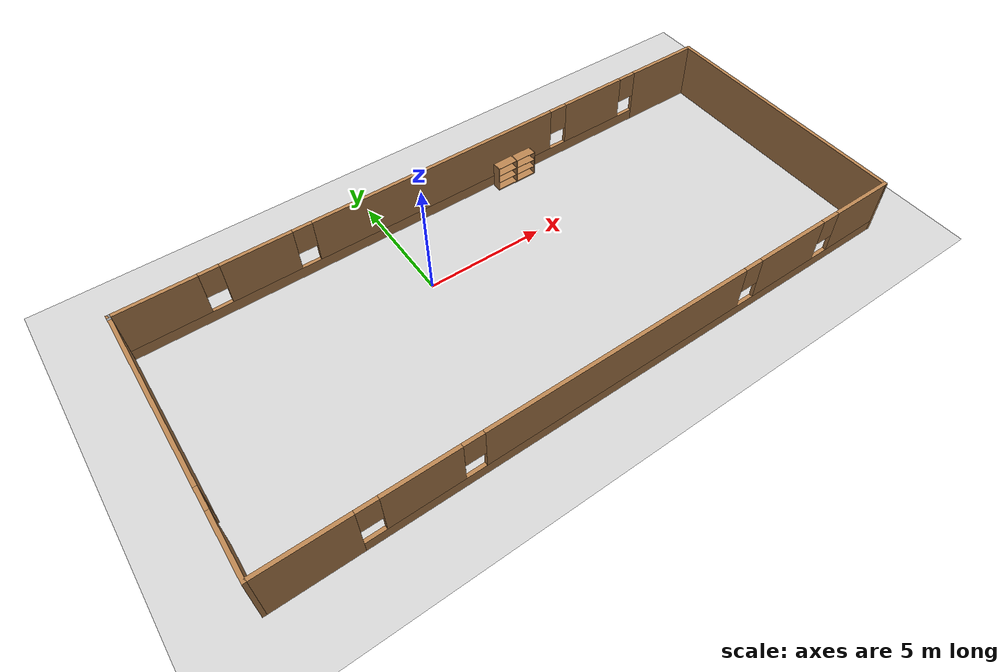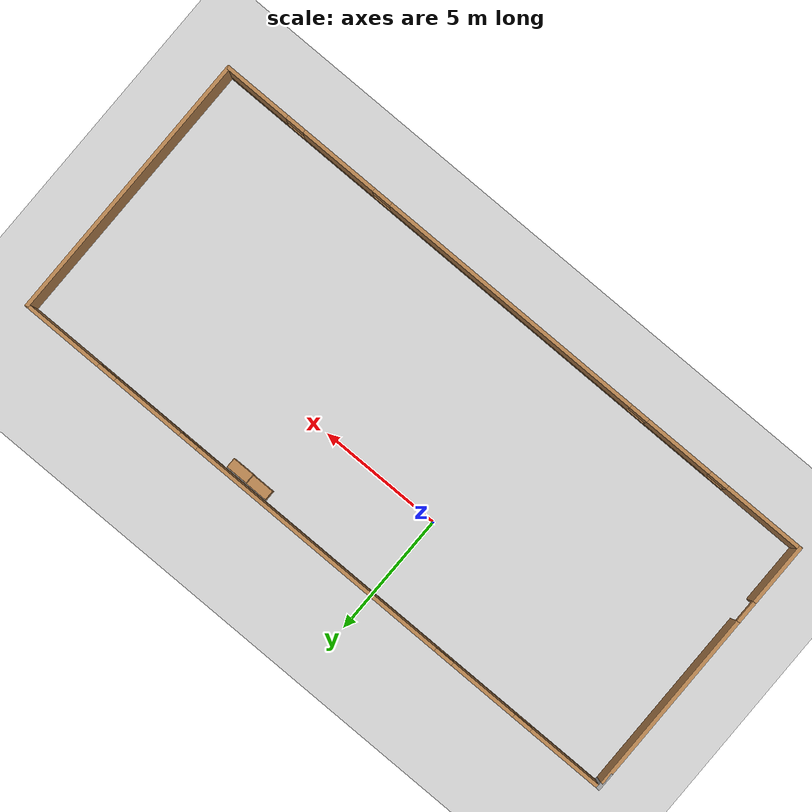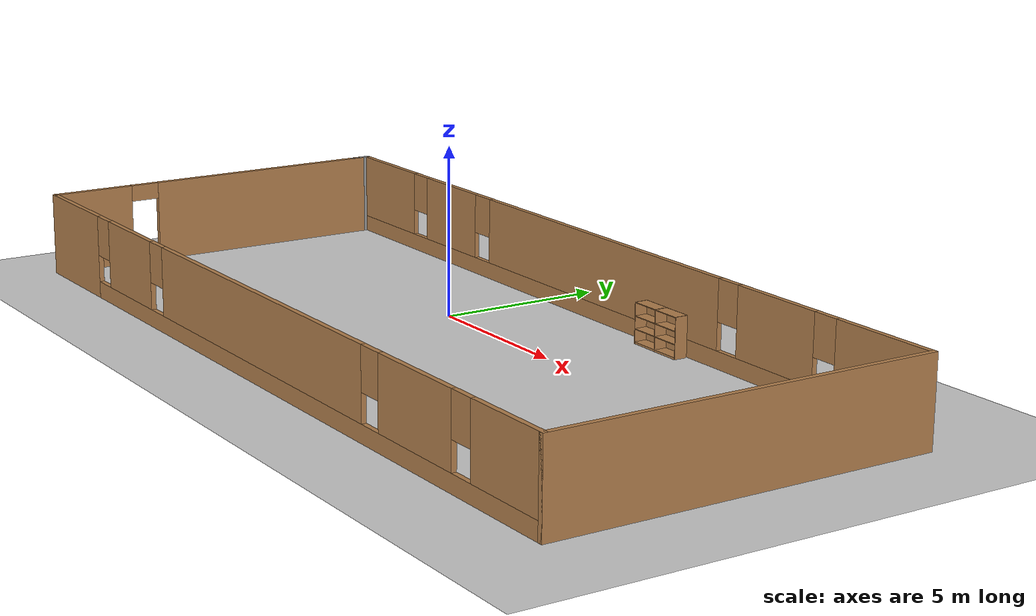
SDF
<sdf version="1.7">
 <world name="default">
  <model name="ground_plane">
   <static>1</static>
   <link name="link">
    <collision name="collision">
     <geometry><plane><normal>0 0 1</normal><size>100 100</size></plane></geometry>
     <surface><friction><ode><mu>100</mu><mu2>50</mu2></ode></friction></surface>
    </collision>
    <visual name="visual">
     <cast_shadows>0</cast_shadows>
     <geometry><plane><normal>0 0 1</normal><size>100 100</size></plane></geometry>
     <material>
      <script><uri>file://media/materials/scripts/gazebo.material</uri><name>Gazebo/Grey</name></script>
     </material>
    </visual>
   </link>
  </model>
  <model name="Library">
   <pose>2.74047 -2.16315 0 0 -0 0</pose>
   <link name="Wall_0">
    <pose>-13.3 -0.125 0 0 -0 -1.5708</pose>
    <visual name="Wall_0_Visual_0">
     <pose>-1.74308 0 1.25 0 -0 0</pose>
     <geometry><box><size>7.51384 0.15 2.5</size></box></geometry>
     <material>
      <script><uri>file://media/materials/scripts/gazebo.material</uri><name>Gazebo/Wood</name></script>
      <ambient>1 1 1 1</ambient>
     </material>
     <meta><layer>0</layer></meta>
    </visual>
    <collision name="Wall_0_Collision_0">
     <geometry><box><size>7.51384 0.15 2.5</size></box></geometry>
     <pose>-1.74308 0 1.25 0 -0 0</pose>
    </collision>
    <visual name="Wall_0_Visual_1">
     <pose>4.20692 0 1.25 0 -0 0</pose>
     <geometry><box><size>2.58616 0.15 2.5</size></box></geometry>
     <material>
      <script><uri>file://media/materials/scripts/gazebo.material</uri><name>Gazebo/Wood</name></script>
      <ambient>1 1 1 1</ambient>
     </material>
     <meta><layer>0</layer></meta>
    </visual>
    <collision name="Wall_0_Collision_1">
     <geometry><box><size>2.58616 0.15 2.5</size></box></geometry>
     <pose>4.20692 0 1.25 0 -0 0</pose>
    </collision>
    <visual name="Wall_0_Visual_2">
     <pose>2.46384 0 2.25 0 -0 0</pose>
     <geometry><box><size>0.9 0.15 0.5</size></box></geometry>
     <material>
      <script><uri>file://media/materials/scripts/gazebo.material</uri><name>Gazebo/Wood</name></script>
      <ambient>1 1 1 1</ambient>
     </material>
     <meta><layer>0</layer></meta>
    </visual>
    <collision name="Wall_0_Collision_2">
     <geometry><box><size>0.9 0.15 0.5</size></box></geometry>
     <pose>2.46384 0 2.25 0 -0 0</pose>
    </collision>
   </link>
   <link name="Wall_1">
    <pose>0 -5.55 0 0 -0 0</pose>
    <visual name="Wall_1_Visual_0">
     <pose>-11.6563 0 1.25 0 -0 0</pose>
     <geometry><box><size>3.43737 0.15 2.5</size></box></geometry>
     <material>
      <script><uri>file://media/materials/scripts/gazebo.material</uri><name>Gazebo/Wood</name></script>
      <ambient>1 1 1 1</ambient>
     </material>
     <meta><layer>0</layer></meta>
    </visual>
    <collision name="Wall_1_Collision_0">
     <geometry><box><size>3.43737 0.15 2.5</size></box></geometry>
     <pose>-11.6563 0 1.25 0 -0 0</pose>
    </collision>
    <visual name="Wall_1_Visual_1">
     <pose>1.71868 0 0.25 0 -0 0</pose>
     <geometry><box><size>23.3126 0.15 0.5</size></box></geometry>
     <material>
      <script><uri>file://media/materials/scripts/gazebo.material</uri><name>Gazebo/Wood</name></script>
      <ambient>1 1 1 1</ambient>
     </material>
     <meta><layer>0</layer></meta>
    </visual>
    <collision name="Wall_1_Collision_1">
     <geometry><box><size>23.3126 0.15 0.5</size></box></geometry>
     <pose>1.71868 0 0.25 0 -0 0</pose>
    </collision>
    <visual name="Wall_1_Visual_2">
     <pose>-7.6969 0 1.5 0 -0 0</pose>
     <geometry><box><size>2.88146 0.15 2</size></box></geometry>
     <material>
      <script><uri>file://media/materials/scripts/gazebo.material</uri><name>Gazebo/Wood</name></script>
      <ambient>1 1 1 1</ambient>
     </material>
     <meta><layer>0</layer></meta>
    </visual>
    <collision name="Wall_1_Collision_2">
     <geometry><box><size>2.88146 0.15 2</size></box></geometry>
     <pose>-7.6969 0 1.5 0 -0 0</pose>
    </collision>
    <visual name="Wall_1_Visual_3">
     <pose>0.131252 0 1.5 0 -0 0</pose>
     <geometry><box><size>11.1749 0.15 2</size></box></geometry>
     <material>
      <script><uri>file://media/materials/scripts/gazebo.material</uri><name>Gazebo/Wood</name></script>
      <ambient>1 1 1 1</ambient>
     </material>
     <meta><layer>0</layer></meta>
    </visual>
    <collision name="Wall_1_Collision_3">
     <geometry><box><size>11.1749 0.15 2</size></box></geometry>
     <pose>0.131252 0 1.5 0 -0 0</pose>
    </collision>
    <visual name="Wall_1_Visual_4">
     <pose>8.14146 0 1.5 0 -0 0</pose>
     <geometry><box><size>3.24556 0.15 2</size></box></geometry>
     <material>
      <script><uri>file://media/materials/scripts/gazebo.material</uri><name>Gazebo/Wood</name></script>
      <ambient>1 1 1 1</ambient>
     </material>
     <meta><layer>0</layer></meta>
    </visual>
    <collision name="Wall_1_Collision_4">
     <geometry><box><size>3.24556 0.15 2</size></box></geometry>
     <pose>8.14146 0 1.5 0 -0 0</pose>
    </collision>
    <visual name="Wall_1_Visual_5">
     <pose>11.9696 0 1.5 0 -0 0</pose>
     <geometry><box><size>2.81076 0.15 2</size></box></geometry>
     <material>
      <script><uri>file://media/materials/scripts/gazebo.material</uri><name>Gazebo/Wood</name></script>
      <ambient>1 1 1 1</ambient>
     </material>
     <meta><layer>0</layer></meta>
    </visual>
    <collision name="Wall_1_Collision_5">
     <geometry><box><size>2.81076 0.15 2</size></box></geometry>
     <pose>11.9696 0 1.5 0 -0 0</pose>
    </collision>
    <visual name="Wall_1_Visual_6">
     <pose>-9.53763 0 1.9 0 -0 0</pose>
     <geometry><box><size>0.8 0.15 1.2</size></box></geometry>
     <material>
      <script><uri>file://media/materials/scripts/gazebo.material</uri><name>Gazebo/Wood</name></script>
      <ambient>1 1 1 1</ambient>
     </material>
     <meta><layer>0</layer></meta>
    </visual>
    <collision name="Wall_1_Collision_6">
     <geometry><box><size>0.8 0.15 1.2</size></box></geometry>
     <pose>-9.53763 0 1.9 0 -0 0</pose>
    </collision>
    <visual name="Wall_1_Visual_7">
     <pose>-5.85617 0 1.9 0 -0 0</pose>
     <geometry><box><size>0.8 0.15 1.2</size></box></geometry>
     <material>
      <script><uri>file://media/materials/scripts/gazebo.material</uri><name>Gazebo/Wood</name></script>
      <ambient>1 1 1 1</ambient>
     </material>
     <meta><layer>0</layer></meta>
    </visual>
    <collision name="Wall_1_Collision_7">
     <geometry><box><size>0.8 0.15 1.2</size></box></geometry>
     <pose>-5.85617 0 1.9 0 -0 0</pose>
    </collision>
    <visual name="Wall_1_Visual_8">
     <pose>6.11868 0 1.9 0 -0 0</pose>
     <geometry><box><size>0.8 0.15 1.2</size></box></geometry>
     <material>
      <script><uri>file://media/materials/scripts/gazebo.material</uri><name>Gazebo/Wood</name></script>
      <ambient>1 1 1 1</ambient>
     </material>
     <meta><layer>0</layer></meta>
    </visual>
    <collision name="Wall_1_Collision_8">
     <geometry><box><size>0.8 0.15 1.2</size></box></geometry>
     <pose>6.11868 0 1.9 0 -0 0</pose>
    </collision>
    <visual name="Wall_1_Visual_9">
     <pose>10.1642 0 1.9 0 -0 0</pose>
     <geometry><box><size>0.8 0.15 1.2</size></box></geometry>
     <material>
      <script><uri>file://media/materials/scripts/gazebo.material</uri><name>Gazebo/Wood</name></script>
      <ambient>1 1 1 1</ambient>
     </material>
     <meta><layer>0</layer></meta>
    </visual>
    <collision name="Wall_1_Collision_9">
     <geometry><box><size>0.8 0.15 1.2</size></box></geometry>
     <pose>10.1642 0 1.9 0 -0 0</pose>
    </collision>
   </link>
   <link name="Wall_2">
    <collision name="Wall_2_Collision">
     <geometry><box><size>11.25 0.15 2.5</size></box></geometry>
     <pose>0 0 1.25 0 -0 0</pose>
    </collision>
    <visual name="Wall_2_Visual">
     <pose>0 0 1.25 0 -0 0</pose>
     <geometry><box><size>11.25 0.15 2.5</size></box></geometry>
     <material>
      <script><uri>file://media/materials/scripts/gazebo.material</uri><name>Gazebo/Wood</name></script>
      <ambient>1 1 1 1</ambient>
     </material>
     <meta><layer>0</layer></meta>
    </visual>
    <pose>13.3 -0 0 0 -0 1.5708</pose>
   </link>
   <link name="Wall_3">
    <pose>0 5.55 0 0 -0 3.14159</pose>
    <visual name="Wall_3_Visual_0">
     <pose>-11.6864 0 1.25 0 -0 0</pose>
     <geometry><box><size>3.37714 0.15 2.5</size></box></geometry>
     <material>
      <script><uri>file://media/materials/scripts/gazebo.material</uri><name>Gazebo/Wood</name></script>
      <ambient>1 1 1 1</ambient>
     </material>
     <meta><layer>0</layer></meta>
    </visual>
    <collision name="Wall_3_Collision_0">
     <geometry><box><size>3.37714 0.15 2.5</size></box></geometry>
     <pose>-11.6864 0 1.25 0 -0 0</pose>
    </collision>
    <visual name="Wall_3_Visual_1">
     <pose>1.68857 0 0.25 0 -0 0</pose>
     <geometry><box><size>23.3729 0.15 0.5</size></box></geometry>
     <material>
      <script><uri>file://media/materials/scripts/gazebo.material</uri><name>Gazebo/Wood</name></script>
      <ambient>1 1 1 1</ambient>
     </material>
     <meta><layer>0</layer></meta>
    </visual>
    <collision name="Wall_3_Collision_1">
     <geometry><box><size>23.3729 0.15 0.5</size></box></geometry>
     <pose>1.68857 0 0.25 0 -0 0</pose>
    </collision>
    <visual name="Wall_3_Visual_2">
     <pose>-7.69644 0 1.5 0 -0 0</pose>
     <geometry><box><size>3.00282 0.15 2</size></box></geometry>
     <material>
      <script><uri>file://media/materials/scripts/gazebo.material</uri><name>Gazebo/Wood</name></script>
      <ambient>1 1 1 1</ambient>
     </material>
     <meta><layer>0</layer></meta>
    </visual>
    <collision name="Wall_3_Collision_2">
     <geometry><box><size>3.00282 0.15 2</size></box></geometry>
     <pose>-7.69644 0 1.5 0 -0 0</pose>
    </collision>
    <visual name="Wall_3_Visual_3">
     <pose>0.151937 0 1.5 0 -0 0</pose>
     <geometry><box><size>11.0939 0.15 2</size></box></geometry>
     <material>
      <script><uri>file://media/materials/scripts/gazebo.material</uri><name>Gazebo/Wood</name></script>
      <ambient>1 1 1 1</ambient>
     </material>
     <meta><layer>0</layer></meta>
    </visual>
    <collision name="Wall_3_Collision_3">
     <geometry><box><size>11.0939 0.15 2</size></box></geometry>
     <pose>0.151937 0 1.5 0 -0 0</pose>
    </collision>
    <visual name="Wall_3_Visual_4">
     <pose>7.91941 0 1.5 0 -0 0</pose>
     <geometry><box><size>2.841 0.15 2</size></box></geometry>
     <material>
      <script><uri>file://media/materials/scripts/gazebo.material</uri><name>Gazebo/Wood</name></script>
      <ambient>1 1 1 1</ambient>
     </material>
     <meta><layer>0</layer></meta>
    </visual>
    <collision name="Wall_3_Collision_4">
     <geometry><box><size>2.841 0.15 2</size></box></geometry>
     <pose>7.91941 0 1.5 0 -0 0</pose>
    </collision>
    <visual name="Wall_3_Visual_5">
     <pose>11.7575 0 1.5 0 -0 0</pose>
     <geometry><box><size>3.23509 0.15 2</size></box></geometry>
     <material>
      <script><uri>file://media/materials/scripts/gazebo.material</uri><name>Gazebo/Wood</name></script>
      <ambient>1 1 1 1</ambient>
     </material>
     <meta><layer>0</layer></meta>
    </visual>
    <collision name="Wall_3_Collision_5">
     <geometry><box><size>3.23509 0.15 2</size></box></geometry>
     <pose>11.7575 0 1.5 0 -0 0</pose>
    </collision>
    <visual name="Wall_3_Visual_6">
     <pose>-9.59786 0 1.9 0 -0 0</pose>
     <geometry><box><size>0.8 0.15 1.2</size></box></geometry>
     <material>
      <script><uri>file://media/materials/scripts/gazebo.material</uri><name>Gazebo/Wood</name></script>
      <ambient>1 1 1 1</ambient>
     </material>
     <meta><layer>0</layer></meta>
    </visual>
    <collision name="Wall_3_Collision_6">
     <geometry><box><size>0.8 0.15 1.2</size></box></geometry>
     <pose>-9.59786 0 1.9 0 -0 0</pose>
    </collision>
    <visual name="Wall_3_Visual_7">
     <pose>-5.79503 0 1.9 0 -0 0</pose>
     <geometry><box><size>0.8 0.15 1.2</size></box></geometry>
     <material>
      <script><uri>file://media/materials/scripts/gazebo.material</uri><name>Gazebo/Wood</name></script>
      <ambient>1 1 1 1</ambient>
     </material>
     <meta><layer>0</layer></meta>
    </visual>
    <collision name="Wall_3_Collision_7">
     <geometry><box><size>0.8 0.15 1.2</size></box></geometry>
     <pose>-5.79503 0 1.9 0 -0 0</pose>
    </collision>
    <visual name="Wall_3_Visual_8">
     <pose>6.09891 0 1.9 0 -0 0</pose>
     <geometry><box><size>0.8 0.15 1.2</size></box></geometry>
     <material>
      <script><uri>file://media/materials/scripts/gazebo.material</uri><name>Gazebo/Wood</name></script>
      <ambient>1 1 1 1</ambient>
     </material>
     <meta><layer>0</layer></meta>
    </visual>
    <collision name="Wall_3_Collision_8">
     <geometry><box><size>0.8 0.15 1.2</size></box></geometry>
     <pose>6.09891 0 1.9 0 -0 0</pose>
    </collision>
    <visual name="Wall_3_Visual_9">
     <pose>9.73991 0 1.9 0 -0 0</pose>
     <geometry><box><size>0.8 0.15 1.2</size></box></geometry>
     <material>
      <script><uri>file://media/materials/scripts/gazebo.material</uri><name>Gazebo/Wood</name></script>
      <ambient>1 1 1 1</ambient>
     </material>
     <meta><layer>0</layer></meta>
    </visual>
    <collision name="Wall_3_Collision_9">
     <geometry><box><size>0.8 0.15 1.2</size></box></geometry>
     <pose>9.73991 0 1.9 0 -0 0</pose>
    </collision>
   </link>
   <link name="Wall_4">
    <collision name="Wall_4_Collision">
     <geometry><box><size>0.75 0.15 2.5</size></box></geometry>
     <pose>0 0 1.25 0 -0 0</pose>
    </collision>
    <visual name="Wall_4_Visual">
     <pose>0 0 1.25 0 -0 0</pose>
     <geometry><box><size>0.75 0.15 2.5</size></box></geometry>
     <material>
      <script><uri>file://media/materials/scripts/gazebo.material</uri><name>Gazebo/Grey</name></script>
      <ambient>1 1 1 1</ambient>
     </material>
     <meta><layer>0</layer></meta>
    </visual>
    <pose>-13.3 5.25 0 0 -0 -1.5708</pose>
   </link>
   <static>1</static>
  </model>
  <model name="bookshelf">
   <static>1</static>
   <link name="link">
    <inertial><mass>1</mass></inertial>
    <collision name="back">
     <pose>0 0.005 0.6 0 -0 0</pose>
     <geometry><box><size>0.9 0.01 1.2</size></box></geometry>
    </collision>
    <visual name="visual1">
     <pose>0 0.005 0.6 0 -0 0</pose>
     <geometry><box><size>0.9 0.01 1.2</size></box></geometry>
     <material>
      <script><uri>file://media/materials/scripts/gazebo.material</uri><name>Gazebo/Wood</name></script>
     </material>
    </visual>
    <collision name="left_side">
     <pose>0.45 -0.195 0.6 0 -0 0</pose>
     <geometry><box><size>0.02 0.4 1.2</size></box></geometry>
    </collision>
    <visual name="visual2">
     <pose>0.45 -0.195 0.6 0 -0 0</pose>
     <geometry><box><size>0.02 0.4 1.2</size></box></geometry>
     <material>
      <script><uri>file://media/materials/scripts/gazebo.material</uri><name>Gazebo/Wood</name></script>
     </material>
    </visual>
    <collision name="right_side">
     <pose>-0.45 -0.195 0.6 0 -0 0</pose>
     <geometry><box><size>0.02 0.4 1.2</size></box></geometry>
    </collision>
    <visual name="visual3">
     <pose>-0.45 -0.195 0.6 0 -0 0</pose>
     <geometry><box><size>0.02 0.4 1.2</size></box></geometry>
     <material>
      <script><uri>file://media/materials/scripts/gazebo.material</uri><name>Gazebo/Wood</name></script>
     </material>
    </visual>
    <collision name="bottom">
     <pose>0 -0.195 0.03 0 -0 0</pose>
     <geometry><box><size>0.88 0.4 0.06</size></box></geometry>
    </collision>
    <visual name="visual4">
     <pose>0 -0.195 0.03 0 -0 0</pose>
     <geometry><box><size>0.88 0.4 0.06</size></box></geometry>
     <material>
      <script><uri>file://media/materials/scripts/gazebo.material</uri><name>Gazebo/Wood</name></script>
     </material>
    </visual>
    <collision name="top">
     <pose>0 -0.195 1.19 0 -0 0</pose>
     <geometry><box><size>0.88 0.4 0.02</size></box></geometry>
    </collision>
    <visual name="visual5">
     <pose>0 -0.195 1.19 0 -0 0</pose>
     <geometry><box><size>0.88 0.4 0.02</size></box></geometry>
     <material>
      <script><uri>file://media/materials/scripts/gazebo.material</uri><name>Gazebo/Wood</name></script>
     </material>
    </visual>
    <collision name="low_shelf">
     <pose>0 -0.195 0.43 0 -0 0</pose>
     <geometry><box><size>0.88 0.4 0.02</size></box></geometry>
    </collision>
    <visual name="visual6">
     <pose>0 -0.195 0.43 0 -0 0</pose>
     <geometry><box><size>0.88 0.4 0.02</size></box></geometry>
     <material>
      <script><uri>file://media/materials/scripts/gazebo.material</uri><name>Gazebo/Wood</name></script>
     </material>
    </visual>
    <collision name="high_shelf">
     <pose>0 -0.195 0.8 0 -0 0</pose>
     <geometry><box><size>0.88 0.4 0.02</size></box></geometry>
    </collision>
    <visual name="visual7">
     <pose>0 -0.195 0.8 0 -0 0</pose>
     <geometry><box><size>0.88 0.4 0.02</size></box></geometry>
     <material>
      <script><uri>file://media/materials/scripts/gazebo.material</uri><name>Gazebo/Wood</name></script>
     </material>
    </visual>
   </link>
   <pose>6.50028 3.23644 0.012624 0 -0 0</pose>
  </model>
  <model name="bookshelf_clone">
   <static>1</static>
   <link name="link">
    <inertial><mass>1</mass></inertial>
    <collision name="back">
     <pose>0 0.005 0.6 0 -0 0</pose>
     <geometry><box><size>0.9 0.01 1.2</size></box></geometry>
    </collision>
    <visual name="visual1">
     <pose>0 0.005 0.6 0 -0 0</pose>
     <geometry><box><size>0.9 0.01 1.2</size></box></geometry>
     <material>
      <script><uri>file://media/materials/scripts/gazebo.material</uri><name>Gazebo/Wood</name></script>
     </material>
    </visual>
    <collision name="left_side">
     <pose>0.45 -0.195 0.6 0 -0 0</pose>
     <geometry><box><size>0.02 0.4 1.2</size></box></geometry>
    </collision>
    <visual name="visual2">
     <pose>0.45 -0.195 0.6 0 -0 0</pose>
     <geometry><box><size>0.02 0.4 1.2</size></box></geometry>
     <material>
      <script><uri>file://media/materials/scripts/gazebo.material</uri><name>Gazebo/Wood</name></script>
     </material>
    </visual>
    <collision name="right_side">
     <pose>-0.45 -0.195 0.6 0 -0 0</pose>
     <geometry><box><size>0.02 0.4 1.2</size></box></geometry>
    </collision>
    <visual name="visual3">
     <pose>-0.45 -0.195 0.6 0 -0 0</pose>
     <geometry><box><size>0.02 0.4 1.2</size></box></geometry>
     <material>
      <script><uri>file://media/materials/scripts/gazebo.material</uri><name>Gazebo/Wood</name></script>
     </material>
    </visual>
    <collision name="bottom">
     <pose>0 -0.195 0.03 0 -0 0</pose>
     <geometry><box><size>0.88 0.4 0.06</size></box></geometry>
    </collision>
    <visual name="visual4">
     <pose>0 -0.195 0.03 0 -0 0</pose>
     <geometry><box><size>0.88 0.4 0.06</size></box></geometry>
     <material>
      <script><uri>file://media/materials/scripts/gazebo.material</uri><name>Gazebo/Wood</name></script>
     </material>
    </visual>
    <collision name="top">
     <pose>0 -0.195 1.19 0 -0 0</pose>
     <geometry><box><size>0.88 0.4 0.02</size></box></geometry>
    </collision>
    <visual name="visual5">
     <pose>0 -0.195 1.19 0 -0 0</pose>
     <geometry><box><size>0.88 0.4 0.02</size></box></geometry>
     <material>
      <script><uri>file://media/materials/scripts/gazebo.material</uri><name>Gazebo/Wood</name></script>
     </material>
    </visual>
    <collision name="low_shelf">
     <pose>0 -0.195 0.43 0 -0 0</pose>
     <geometry><box><size>0.88 0.4 0.02</size></box></geometry>
    </collision>
    <visual name="visual6">
     <pose>0 -0.195 0.43 0 -0 0</pose>
     <geometry><box><size>0.88 0.4 0.02</size></box></geometry>
     <material>
      <script><uri>file://media/materials/scripts/gazebo.material</uri><name>Gazebo/Wood</name></script>
     </material>
    </visual>
    <collision name="high_shelf">
     <pose>0 -0.195 0.8 0 -0 0</pose>
     <geometry><box><size>0.88 0.4 0.02</size></box></geometry>
    </collision>
    <visual name="visual7">
     <pose>0 -0.195 0.8 0 -0 0</pose>
     <geometry><box><size>0.88 0.4 0.02</size></box></geometry>
     <material>
      <script><uri>file://media/materials/scripts/gazebo.material</uri><name>Gazebo/Wood</name></script>
     </material>
    </visual>
   </link>
   <pose>5.58313 3.24733 0.012624 0 -0 0</pose>
  </model>
 </world>
</sdf>
